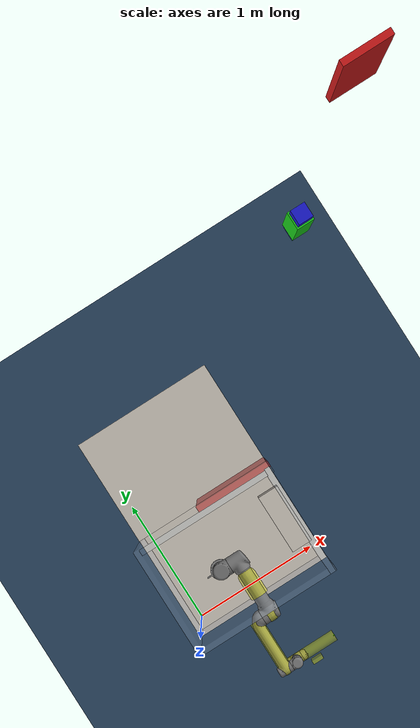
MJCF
<!--Link  MuJoCo modeling: http://www.mujoco.org/book/modeling.html-->

<mujoco model="ur5gripper">
    <compiler angle="radian"
              inertiafromgeom="true"
              texturedir="textures/"
              meshdir="mesh/visual/"/>

              <!--timestep="2e-3"
            iterations="10"
            tolerance="1e-10"
            impratio="20"-->
    <option
            integrator="implicitfast"/>
    <size njmax="600" nconmax="150" nstack="300000"/>

    <default>
        <site rgba="0.8 0.6 0.7 0.3" type="ellipsoid" group="3"/>
        <geom contype='1' conaffinity='1' condim='4'  margin="1e-3" solref=".01 1" solimp=".99 .99 .01" />
        <default class="UR5">
            <joint damping='25'/> <!--Og 65-->
        </default>
        <default class="UR5e">
            <joint damping='5'/> <!--Og 45-->
        </default>
        <default class="GRIPPER">
            <joint damping='1'/>
        </default>
        <!--From UR5e-->
        <default class="collision">
            <geom type="capsule" group="0"/>
            <default class="eef_collision">
            <geom type="cylinder"/>
            </default>
        </default>
    </default>

    <visual>
        <map fogstart="3" fogend="5" znear="0.05"/>
        <quality shadowsize="2048"/>
        <scale framelength="0.1"
               framewidth="0.005"
               contactwidth="0.1"
               contactheight="0.005"
               forcewidth="0.01"
               />
    </visual>

    <!--Assets-->
    <asset>
        <!--Meshes-->
        <mesh name="base"           file="base.stl"     />
        <mesh name="shoulder"       file="shoulder.stl" />
        <mesh name="upperarm"       file="upperarm.stl" />
        <mesh name="forearm"        file="forearm.stl"  />
        <mesh name="wrist1"         file="wrist1.stl"   />
        <mesh name="wrist2"         file="wrist2.stl"   />
        <mesh name="wrist3"         file="wrist3.stl"   />
        <mesh name="gripperpalm"    file="palm.STL"     />
        <mesh name="link_0"         file="link_0.STL"   />
        <mesh name="link_1"         file="link_1.STL"   />
        <mesh name="link_2"         file="link_2.STL"   />
        <mesh name="link_3"         file="link_3.STL"   />
        <!--Textures-->
        <texture name="ur5_tex"     type="2d"       builtin="flat" height="32" width="32" rgb1="0.45 0.45 0.45" />
        <texture name="gripper_tex" type="2d"       builtin="flat" height="32" width="32" rgb1="0.45 0.45 0.45" rgb2="0 0 0"/>
        <texture name="bench_tex"   type="2d"       builtin="flat" height="32" width="32" rgb1="0.7 0.7 0.7" />
        <texture name="sky_tex"     type="skybox"   builtin="gradient" width="100" height="100" rgb1="1 1 1" rgb2="0.3 0.3 0.8" />
        <texture name="texgeom"     type="cube"     builtin="flat" mark="cross" width="127" height="1278" rgb1="0.8 0.6 0.4" rgb2="0.8 0.6 0.4" markrgb="1 1 1" random="0.01" />
        <texture name="floor_tex"   type="2d"        builtin="checker" rgb1=".2 .3 .4" rgb2=".1 .2 .3" width="100" height="100" />
        <texture name="wood"        type="cube"     file="wood2.png"/>
        <texture name="metal"        type="cube"     file="metal2.png"/>
        <!--Materials-->
        <material name="ur5_mat"        texture="ur5_tex"   shininess="0.9" specular="0.75" reflectance="0.3" /> <!--rgba="0.2 0.2 0.2 0.2"-->
        <material name="gripper_mat"    texture="gripper_tex"   shininess="0.9" specular="0.75" reflectance="0.4"/>
        <material name='floor_mat'      texture="floor_tex"  shininess="0.8" texrepeat="10 10" specular="0.7"  reflectance="0.5" />
        <material name='geom'           texture="texgeom"   texuniform="true" />
        <material name="bench_mat"      texture="metal"   shininess="0.1" specular="0.5" reflectance="0.2"/>
        <material name="tablecube"      texture="wood" rgba=".8 .8 .8 1"/>
        <!-- IGCV   -->
        <material name="glass" rgba="0.8 0.9 1 0.15" specular="1" shininess="1" reflectance="0.3"/>
    </asset>

    <!--Contacts-->
    <contact>
        <exclude body1="robot_cell" body2="base_link"/>
		<exclude body1="base_link" body2="shoulder_link"/>
		<exclude body1="shoulder_link" body2="upper_arm_link"/>
        <exclude body1="upper_arm_link" body2="forearm_link"/>
		<exclude body1="forearm_link" body2="wrist_1_link"/>
		<exclude body1="wrist_1_link" body2="wrist_2_link"/>
        <exclude body1="wrist_2_link" body2="wrist_3_link"/>
        <exclude body1="ee_link" body2="wrist_3_link"/>

        <!-- exclude target body -->
        <exclude body1="robot_cell" body2="target"/>
		<exclude body1="base_link" body2="target"/>
		<exclude body1="shoulder_link" body2="target"/>
        <exclude body1="upper_arm_link" body2="target"/>
		<exclude body1="forearm_link" body2="target"/>
		<exclude body1="wrist_1_link" body2="target"/>
        <exclude body1="wrist_2_link" body2="target"/>
        <exclude body1="wrist_3_link" body2="target"/>

    </contact>

    <!--MODEL DESCRIPTION-->
    <worldbody>
        <!--Lighting parameters-->
        <light name="light3" mode="targetbody" target="robot_cell" directional="true" pos="1 1 3" />
        <!--Camera parameters-->
        <!--Floor Property-->
        <geom name='floor' material="floor_mat" pos='0 0 0' size='2.5 2.5 0.1'  type='plane' />

        <site name="world_axes" pos="0 0 0" type="ellipsoid" size="0.01 0.01 0.01" rgba="0 0 0 1" />

        <!-- X-Achse (rot) -->
        <geom name="x_axis" type="capsule" fromto="0 0 0 0.2 0 0" size="0.005" rgba="1 0 0 1"/>
        <!-- Y-Achse (grün) -->
        <geom name="y_axis" type="capsule" fromto="0 0 0 0 0.2 0" size="0.005" rgba="0 1 0 1"/>
        <!-- Z-Achse (blau) -->
        <geom name="z_axis" type="capsule" fromto="0 0 0 0 0 0.2" size="0.005" rgba="0 0 1 1"/>

        <body name="robot_cell" pos="0 0 0">

            <!-- Tischplatte -->
            <geom name="table_block" type="box" size="0.525 0.40 0.465" pos="0.525 0.40 0.465" contype="1" conaffinity="1" material="bench_mat" />
            <geom name="table_block_2" type="box" size="0.525 0.40 0.475" pos="0.525 1.20 0.475" contype="1" conaffinity="1" material="bench_mat" />
            <!-- Wand links (x = -0.02 + 0.02) = 0.02 -->
            <geom name="wall_left" type="box" size="0.02 0.40 0.37" pos="0.02 0.40 1.3" contype="1" conaffinity="1" material="glass"/>
            <!-- Wand rechts (x = 1.042 - 0.02 = 1.022) -->
            <geom name="wall_right" type="box" size="0.02 0.40 0.37" pos="1.022 0.40 1.3" contype="1" conaffinity="1" material="glass"/>
            <!-- Wand vorne (y = -0.02 + 0.02 = 0.02) -->
            <geom name="wall_front" type="box" size="0.525 0.02 0.37" pos="0.525 0.02 1.3" contype="1" conaffinity="1" material="glass"/>
            <!-- Decke -->
            <geom name="ceiling" type="box" size="0.525 0.02 0.02" pos="0.525 0.772 1.65" contype="1" conaffinity="1" material="glass"/>
            <!--GreiferFach-->
            <geom name="gripper_shelf" type="box" size="0.075 0.215 0.075" pos="0.945 0.425 1.275" contype="1" conaffinity="1" material="bench_mat"/>

            <inertial pos="0 0 0" mass="1000" diaginertia="0 0 0" />
            <body name="base_link" pos="0.3755 0.325 0.93" quat="-1 0 0 1" >
                <inertial pos="0 0 0" quat="0.5 0.5 -0.5 0.5" mass="4" diaginertia="0.0072 0.00443333 0.00443333" />
                <geom type="mesh"  mesh="base" material="ur5_mat"/>
                <body name="shoulder_link" pos="0 0 0.089159" >
                    <inertial pos="0 0 0" mass="3.7" diaginertia="0.0102675 0.0102675 0.00666" />
                    <joint name="shoulder_pan_joint" class="UR5" pos="0 0 0" axis="0 0 1" limited="true" range="-6.28318 6.28318" />
                    <geom name="shoulder_geom" type="mesh"  mesh="shoulder" material="ur5_mat"/>
                    <body name="upper_arm_link" pos="0 0.13585 0" quat="0.707107 0 0.707107 0">
                        <inertial pos="0 0 0.28" mass="8.393" diaginertia="0.226891 0.226891 0.0151074" />
                        <joint name="shoulder_lift_joint" class="UR5" pos="0 0 0" axis="0 1 0" limited="true" range="-6.28318 0" /> <!--Range= -6.28318 6.28318-->
                        <geom name="upperarm_geom" type="mesh"  mesh="upperarm" material="ur5_mat" />
                        <geom name="upperarm_geom_2" class="collision" size="0.065 0.15" pos="0 0 0.275" rgba="1 1 0 0.4"/> <!--size="0.05 0.2 pos="0 0 0.2"-->
                        <body name="forearm_link" pos="0 -0.1197 0.425">
                            <inertial pos="0 0 0.25" mass="2.275" diaginertia="0.0494433 0.0494433 0.004095" />
                            <joint name="elbow_joint" class="UR5" pos="0 0 0" axis="0 1 0" limited="true" range="-6.28318 6.28318" />
                            <geom name="forearm_geom" type="mesh"  mesh="forearm" material="ur5_mat"/>
                            <geom name="forearm_geom_2" class="collision" size="0.045 0.2" pos="0 0 0.19" rgba="1 1 0 0.4"/> <!--size="0.038 0.19"-->
                            <body name="wrist_1_link" pos="0 0 0.39225" quat="0.707107 0 0.707107 0">
                                <inertial pos="0 0 0" quat="0.5 0.5 -0.5 0.5" mass="1.219" diaginertia="0.21942 0.111173 0.111173" />
                                <joint name="wrist_1_joint" class="UR5e" pos="0 0 0" axis="0 1 0" limited="true" range="-6.28318 6.28318" />
                                <geom name="wrist_1_geom" type="mesh"  mesh="wrist1" material="ur5_mat"/>
                                <body name="wrist_2_link" pos="0 0.093 0" >
                                    <inertial pos="0 0 0" quat="0.5 0.5 -0.5 0.5" mass="1.219" diaginertia="0.21942 0.111173 0.111173" />
                                    <joint name="wrist_2_joint" class="UR5e" pos="0 0 0" axis="0 0 1" limited="true" range="-6.28318 6.28318" />
                                    <geom name="wrist_2_geom" type="mesh"  mesh="wrist2" material="ur5_mat"/>
                                    <body name="wrist_3_link" pos="0 0 0.09465" ><!-- quat="0.707107 0 0.707107 0"-->
                                        <inertial pos="0 0 0" quat="0.5 0.5 -0.5 0.5" mass="0.1879" diaginertia="0.033822 0.0171365 0.0171365" />
                                        <joint name="wrist_3_joint" class="UR5e" pos="0 0 0" axis="0 1 0" limited="true" range="-6.28318 6.28318" />
                                        <geom name="wrist_3_geom" type="mesh"  mesh="wrist3" material="ur5_mat"/>
                                        <geom name="wrist_3_geom_gripper" type="cylinder" size="0.04 0.19" rgba="1 1 0 0.4" pos="0.0 0.125 0.0" quat="0.707 -0.7071 0 0"/>
                                        <geom name="cambrian_camera" type="box" size="0.05 0.0125 0.04" pos="-0.075 0.125 0.0" quat="0.5 0.5 -0.5 0.5" rgba="1 1 0 0.4" material="glass"/> <!--quat="0.707 -0.7071 0 0"-->
                                        <body name="ee_link" pos="0 0.0823 0" quat="0.707107 -0.707107 0 0">
                                            <inertial pos="-0.01 0 0" mass="0.001" diaginertia="1.66667e-08 1.66667e-08 1.66667e-08" />
                                            <geom name="ee_link_geom" size="0.005 0.005 0.005" pos="-0.01 0 0" type="box" />
                                            <site name="TCP" pos=" 0 0 0.23" size="0.005" rgba="0 1 0 1" group="2"/> <!-- quat="0.7071 0 0 0.7071" quat="-1 0 0 1" quat="0 0.707107 0 0.707107"-->

                                        </body>
                                    </body>
                                </body>
                            </body>
                        </body>
                    </body>
                </body>
            </body>
        </body>

        <!-- IGCV_DOOR -->
        <body name="door" pos="0.775 0.812 1.3">
            <geom name="door_geom" type="box" size="0.275 0.02 0.37"  rgba="0.8 0.1 0.1 0.5" contype="1" conaffinity="1"  material="glass"/>
        </body>

        <body name="target" pos="0.7 0 0.3">
            <geom name="target_geom" type="box" size="0.01 0.01 0.01" rgba="0 1 0 1" contype="0" conaffinity="0"/>
        </body>

        <!-- Neue Hindernisse auf dem Tisch -->
        <body name="obstacle_1" pos="2 2 2"><!--#pos="0.4 0.4 0.93">-->
            <!-- New Door -->
            <geom name="obstacle_geom_1" type="box" size="0.15 0.02 0.37" pos="0.521 0.396 1.3" rgba="0.8 0.1 0.1 1" contype="1" conaffinity="1"  material="glass"/>
        </body>
        <body name="obstacle_2" pos="2 2 2"><!--pos="0.6 0.3 0.93">-->
            <geom name="obstacle_geom_2" type="box" size="0.06 0.06 0.25" rgba="0.1 0.8 0.1 1" contype="1" conaffinity="1"/>
        </body>
        <body name="obstacle_3" pos="2 2 2"><!--pos="0.5 0.5 0.93">-->
            <geom name="obstacle_geom_3" type="box" size="0.05 0.05 0.35" rgba="0.1 0.1 0.8 1" contype="1" conaffinity="1"/>
        </body>
    </worldbody>

    <!--ACTUATORS-->
    <actuator>
        <!--UR5-->
        <position name='shoulder_pan' ctrllimited="true" ctrlrange="-6.28318 6.28318" joint='shoulder_pan_joint' kp="2000" kv="100" forcerange="-150 150"/> <!--kp500-->
        <position name='shoulder_lift' ctrllimited="true" ctrlrange="-6.28318 6.28318" joint='shoulder_lift_joint' kp="2000" kv="100" forcerange="-150 150"/><!--kp500-->
        <position name='forearm' ctrllimited="true" ctrlrange="-6.28318 6.28318" joint='elbow_joint' kp="2000" kv="100" forcerange="-150 150" /><!--kp500-->
        <position name='wrist_1' ctrllimited="true" ctrlrange="-6.28318 6.28318" joint='wrist_1_joint' kp="500" kv="25" forcerange="-28 28" /><!--kp100-->
        <position name='wrist_2' ctrllimited="true" ctrlrange="-6.28318 6.28318" joint='wrist_2_joint' kp="500" kv="25" forcerange="-28 28"/><!--kp100-->
        <position name='wrist_3' ctrllimited="true" ctrlrange="-6.28318 6.28318" joint='wrist_3_joint' kp="500" kv="25" forcerange="-28 28"/><!--kp100-->

        <!--UR5 Orginal-->

        <!--Gripper-->

    </actuator>

    <keyframe>
        <key name="home" qpos="-1.5708 -1.5708 1.5708 -1.5708 -1.5708 0" ctrl="-1.5708 -1.5708 1.5708 -1.5708 -1.5708 0"/>
    </keyframe>
    <sensor>

        <distance name="dist_upperarm_table" geom1="upperarm_geom_2" geom2="table_block" cutoff="1"/>
        <distance name="dist_upperarm_table_2" geom1="upperarm_geom_2" geom2="table_block_2" cutoff="1"/>
        <distance name="dist_upperarm_left" geom1="upperarm_geom_2" geom2="wall_left" cutoff="1"/>
        <distance name="dist_upperarm_front" geom1="upperarm_geom_2" geom2="wall_front" cutoff="1"/>
        <distance name="dist_upperarm_door" geom1="upperarm_geom_2" geom2="door_geom" cutoff="1"/>
        <distance name="dist_upperarm_gripper_shelf" geom1="upperarm_geom_2" geom2="gripper_shelf" cutoff="1"/>

        <distance name="dist_forearm_table" geom1="forearm_geom_2" geom2="table_block" cutoff="1"/>
        <distance name="dist_forearm_table_2" geom1="forearm_geom_2" geom2="table_block_2" cutoff="1"/>
        <distance name="dist_forearm_left" geom1="forearm_geom_2" geom2="wall_left" cutoff="1"/>
        <distance name="dist_forearm_right" geom1="forearm_geom_2" geom2="wall_right" cutoff="1"/>
        <distance name="dist_forearm_front" geom1="forearm_geom_2" geom2="wall_front" cutoff="1"/>
        <distance name="dist_forearm_ceiling" geom1="forearm_geom_2" geom2="ceiling" cutoff="1"/>
        <distance name="dist_forearm_door" geom1="forearm_geom_2" geom2="door_geom" cutoff="1"/>
        <distance name="dist_forearm_gripper_shelf" geom1="forearm_geom_2" geom2="gripper_shelf" cutoff="1"/>

        <distance name="dist_wrist3_table" geom1="wrist_3_geom_gripper" geom2="table_block" cutoff="1"/>
        <distance name="dist_wrist3_table_2" geom1="wrist_3_geom_gripper" geom2="table_block_2" cutoff="1"/>
        <distance name="dist_wrist3_left" geom1="wrist_3_geom_gripper" geom2="wall_left" cutoff="1"/>
        <distance name="dist_wrist3_right" geom1="wrist_3_geom_gripper" geom2="wall_right" cutoff="1"/>
        <distance name="dist_wrist3_front" geom1="wrist_3_geom_gripper" geom2="wall_front" cutoff="1"/>
        <distance name="dist_wrist3_ceiling" geom1="wrist_3_geom_gripper" geom2="ceiling" cutoff="1"/>
        <distance name="dist_wrist3_door" geom1="wrist_3_geom_gripper" geom2="door_geom" cutoff="1"/>
        <distance name="dist_wrist3_gripper_shelf" geom1="wrist_3_geom_gripper" geom2="gripper_shelf" cutoff="1"/>

        <distance name="dist_cam_left" geom1="cambrian_camera" geom2="wall_left" cutoff="1"/>
        <distance name="dist_cam_gripper_shelf" geom1="cambrian_camera" geom2="gripper_shelf" cutoff="1"/>
        <distance name="dist_cam_front" geom1="cambrian_camera" geom2="wall_front" cutoff="1"/>
        <distance name="dist_cam_ceiling" geom1="cambrian_camera" geom2="ceiling" cutoff="1"/>
        <distance name="dist_cam_door" geom1="cambrian_camera" geom2="door_geom" cutoff="1"/>

        <distance name="dist_wrist3_forearm" geom1="wrist_3_geom_gripper" geom2="forearm_geom_2" cutoff="1"/>
        <distance name="dist_wrist3_upperarm" geom1="wrist_3_geom_gripper" geom2="upperarm_geom_2" cutoff="1"/>

        <!-- Abstandssensoren zu neuen Hindernissen -->
        <distance name="dist_upperarm_obs1" geom1="upperarm_geom_2" geom2="obstacle_geom_1" cutoff="1"/>
        <distance name="dist_upperarm_obs2" geom1="upperarm_geom_2" geom2="obstacle_geom_2" cutoff="1"/>
        <distance name="dist_upperarm_obs3" geom1="upperarm_geom_2" geom2="obstacle_geom_3" cutoff="1"/>

        <distance name="dist_forearm_obs1" geom1="forearm_geom_2" geom2="obstacle_geom_1" cutoff="1"/>
        <distance name="dist_forearm_obs2" geom1="forearm_geom_2" geom2="obstacle_geom_2" cutoff="1"/>
        <distance name="dist_forearm_obs3" geom1="forearm_geom_2" geom2="obstacle_geom_3" cutoff="1"/>

        <distance name="dist_wrist3_obs1" geom1="wrist_3_geom_gripper" geom2="obstacle_geom_1" cutoff="1"/>
        <distance name="dist_wrist3_obs2" geom1="wrist_3_geom_gripper" geom2="obstacle_geom_2" cutoff="1"/>
        <distance name="dist_wrist3_obs3" geom1="wrist_3_geom_gripper" geom2="obstacle_geom_3" cutoff="1"/>

    </sensor>

</mujoco>
